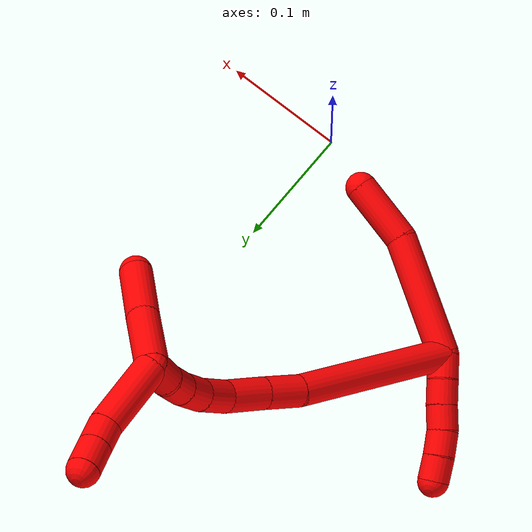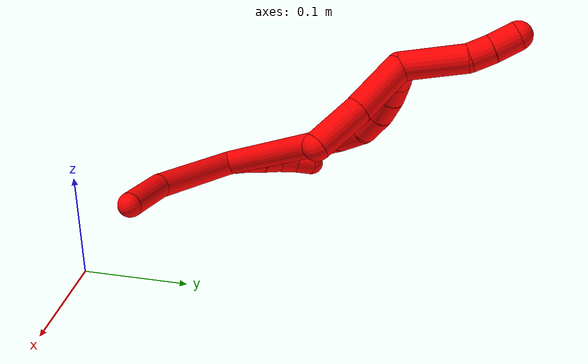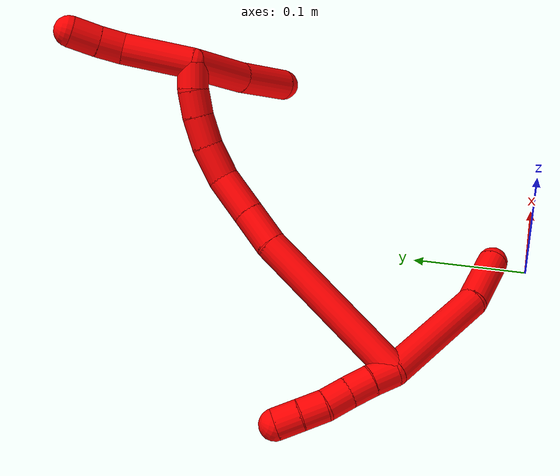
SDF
<sdf version="1.7">
 <world name="default">
  <model name="2">
   <static>0</static>
   <link name="2">
    <collision name="collision-cylinder-e_1_2_8">
     <pose>0.026099 -0.026071 -0.032211 2.46116 0.562049 1.36821</pose>
     <geometry><cylinder><radius>0.0125</radius><length>0.097947</length></cylinder></geometry>
     <surface>
      <friction><ode><mu>1.16</mu><mu2>1.16</mu2><slip1>0</slip1><slip2>0</slip2></ode></friction>
      <contact><ode><kp>1e+06</kp><kd>1</kd><max_vel>0</max_vel><min_depth>0.001</min_depth></ode></contact>
     </surface>
    </collision>
    <visual name="visual-cylinder-e_1_2_8">
     <pose>0.026099 -0.026071 -0.032211 2.46116 0.562049 1.36821</pose>
     <geometry><cylinder><radius>0.0125</radius><length>0.097947</length></cylinder></geometry>
     <material><ambient>1 0 0 1</ambient></material>
    </visual>
    <collision name="collision-cylinder-e_2_8_6">
     <pose>0.071868 -0.064713 -0.075932 2.31217 0.856804 1.60746</pose>
     <geometry><cylinder><radius>0.0125</radius><length>0.052053</length></cylinder></geometry>
     <surface>
      <friction><ode><mu>1.16</mu><mu2>1.16</mu2><slip1>0</slip1><slip2>0</slip2></ode></friction>
      <contact><ode><kp>1e+06</kp><kd>1</kd><max_vel>0</max_vel><min_depth>0.001</min_depth></ode></contact>
     </surface>
    </collision>
    <visual name="visual-cylinder-e_2_8_6">
     <pose>0.071868 -0.064713 -0.075932 2.31217 0.856804 1.60746</pose>
     <geometry><cylinder><radius>0.0125</radius><length>0.052053</length></cylinder></geometry>
     <material><ambient>1 0 0 1</ambient></material>
    </visual>
    <collision name="collision-cylinder-e_1_2_9">
     <pose>-0.001978 0.005489 0.008121 -0.594353 -0.199153 0.061173</pose>
     <geometry><cylinder><radius>0.0125</radius><length>0.02</length></cylinder></geometry>
     <surface>
      <friction><ode><mu>1.16</mu><mu2>1.16</mu2><slip1>0</slip1><slip2>0</slip2></ode></friction>
      <contact><ode><kp>1e+06</kp><kd>1</kd><max_vel>0</max_vel><min_depth>0.001</min_depth></ode></contact>
     </surface>
    </collision>
    <visual name="visual-cylinder-e_1_2_9">
     <pose>-0.001978 0.005489 0.008121 -0.594353 -0.199153 0.061173</pose>
     <geometry><cylinder><radius>0.0125</radius><length>0.02</length></cylinder></geometry>
     <material><ambient>1 0 0 1</ambient></material>
    </visual>
    <collision name="collision-cylinder-e_2_9_10">
     <pose>-0.005714 0.017182 0.023886 -0.68176 -0.176682 0.062817</pose>
     <geometry><cylinder><radius>0.0125</radius><length>0.02</length></cylinder></geometry>
     <surface>
      <friction><ode><mu>1.16</mu><mu2>1.16</mu2><slip1>0</slip1><slip2>0</slip2></ode></friction>
      <contact><ode><kp>1e+06</kp><kd>1</kd><max_vel>0</max_vel><min_depth>0.001</min_depth></ode></contact>
     </surface>
    </collision>
    <visual name="visual-cylinder-e_2_9_10">
     <pose>-0.005714 0.017182 0.023886 -0.68176 -0.176682 0.062817</pose>
     <geometry><cylinder><radius>0.0125</radius><length>0.02</length></cylinder></geometry>
     <material><ambient>1 0 0 1</ambient></material>
    </visual>
    <collision name="collision-cylinder-e_3_10_11">
     <pose>-0.00987 0.029494 0.039076 -0.680542 -0.242179 0.08611</pose>
     <geometry><cylinder><radius>0.0125</radius><length>0.02</length></cylinder></geometry>
     <surface>
      <friction><ode><mu>1.16</mu><mu2>1.16</mu2><slip1>0</slip1><slip2>0</slip2></ode></friction>
      <contact><ode><kp>1e+06</kp><kd>1</kd><max_vel>0</max_vel><min_depth>0.001</min_depth></ode></contact>
     </surface>
    </collision>
    <visual name="visual-cylinder-e_3_10_11">
     <pose>-0.00987 0.029494 0.039076 -0.680542 -0.242179 0.08611</pose>
     <geometry><cylinder><radius>0.0125</radius><length>0.02</length></cylinder></geometry>
     <material><ambient>1 0 0 1</ambient></material>
    </visual>
    <collision name="collision-cylinder-e_4_11_12">
     <pose>-0.012972 0.041385 0.054749 -0.618442 -0.070397 0.022498</pose>
     <geometry><cylinder><radius>0.0125</radius><length>0.02</length></cylinder></geometry>
     <surface>
      <friction><ode><mu>1.16</mu><mu2>1.16</mu2><slip1>0</slip1><slip2>0</slip2></ode></friction>
      <contact><ode><kp>1e+06</kp><kd>1</kd><max_vel>0</max_vel><min_depth>0.001</min_depth></ode></contact>
     </surface>
    </collision>
    <visual name="visual-cylinder-e_4_11_12">
     <pose>-0.012972 0.041385 0.054749 -0.618442 -0.070397 0.022498</pose>
     <geometry><cylinder><radius>0.0125</radius><length>0.02</length></cylinder></geometry>
     <material><ambient>1 0 0 1</ambient></material>
    </visual>
    <collision name="collision-cylinder-e_5_12_5">
     <pose>-0.013558 0.053347 0.070739 -0.666033 0.011698 -0.004046</pose>
     <geometry><cylinder><radius>0.0125</radius><length>0.02</length></cylinder></geometry>
     <surface>
      <friction><ode><mu>1.16</mu><mu2>1.16</mu2><slip1>0</slip1><slip2>0</slip2></ode></friction>
      <contact><ode><kp>1e+06</kp><kd>1</kd><max_vel>0</max_vel><min_depth>0.001</min_depth></ode></contact>
     </surface>
    </collision>
    <visual name="visual-cylinder-e_5_12_5">
     <pose>-0.013558 0.053347 0.070739 -0.666033 0.011698 -0.004046</pose>
     <geometry><cylinder><radius>0.0125</radius><length>0.02</length></cylinder></geometry>
     <material><ambient>1 0 0 1</ambient></material>
    </visual>
    <collision name="collision-cylinder-e_1_2_13">
     <pose>0.040081 -0.022184 0.051324 0.407993 0.621944 0.132783</pose>
     <geometry><cylinder><radius>0.0125</radius><length>0.13759</length></cylinder></geometry>
     <surface>
      <friction><ode><mu>1.16</mu><mu2>1.16</mu2><slip1>0</slip1><slip2>0</slip2></ode></friction>
      <contact><ode><kp>1e+06</kp><kd>1</kd><max_vel>0</max_vel><min_depth>0.001</min_depth></ode></contact>
     </surface>
    </collision>
    <visual name="visual-cylinder-e_1_2_13">
     <pose>0.040081 -0.022184 0.051324 0.407993 0.621944 0.132783</pose>
     <geometry><cylinder><radius>0.0125</radius><length>0.13759</length></cylinder></geometry>
     <material><ambient>1 0 0 1</ambient></material>
    </visual>
    <collision name="collision-cylinder-e_2_13_14">
     <pose>0.090283 -0.050937 0.112772 0.57552 0.697839 0.214528</pose>
     <geometry><cylinder><radius>0.0125</radius><length>0.031501</length></cylinder></geometry>
     <surface>
      <friction><ode><mu>1.16</mu><mu2>1.16</mu2><slip1>0</slip1><slip2>0</slip2></ode></friction>
      <contact><ode><kp>1e+06</kp><kd>1</kd><max_vel>0</max_vel><min_depth>0.001</min_depth></ode></contact>
     </surface>
    </collision>
    <visual name="visual-cylinder-e_2_13_14">
     <pose>0.090283 -0.050937 0.112772 0.57552 0.697839 0.214528</pose>
     <geometry><cylinder><radius>0.0125</radius><length>0.031501</length></cylinder></geometry>
     <material><ambient>1 0 0 1</ambient></material>
    </visual>
    <collision name="collision-cylinder-e_3_14_15">
     <pose>0.110765 -0.06541 0.134816 0.585534 0.62697 0.194812</pose>
     <geometry><cylinder><radius>0.0125</radius><length>0.035322</length></cylinder></geometry>
     <surface>
      <friction><ode><mu>1.16</mu><mu2>1.16</mu2><slip1>0</slip1><slip2>0</slip2></ode></friction>
      <contact><ode><kp>1e+06</kp><kd>1</kd><max_vel>0</max_vel><min_depth>0.001</min_depth></ode></contact>
     </surface>
    </collision>
    <visual name="visual-cylinder-e_3_14_15">
     <pose>0.110765 -0.06541 0.134816 0.585534 0.62697 0.194812</pose>
     <geometry><cylinder><radius>0.0125</radius><length>0.035322</length></cylinder></geometry>
     <material><ambient>1 0 0 1</ambient></material>
    </visual>
    <collision name="collision-cylinder-e_4_15_16">
     <pose>0.126356 -0.082915 0.156141 0.795671 0.371051 0.15742</pose>
     <geometry><cylinder><radius>0.0125</radius><length>0.028845</length></cylinder></geometry>
     <surface>
      <friction><ode><mu>1.16</mu><mu2>1.16</mu2><slip1>0</slip1><slip2>0</slip2></ode></friction>
      <contact><ode><kp>1e+06</kp><kd>1</kd><max_vel>0</max_vel><min_depth>0.001</min_depth></ode></contact>
     </surface>
    </collision>
    <visual name="visual-cylinder-e_4_15_16">
     <pose>0.126356 -0.082915 0.156141 0.795671 0.371051 0.15742</pose>
     <geometry><cylinder><radius>0.0125</radius><length>0.028845</length></cylinder></geometry>
     <material><ambient>1 0 0 1</ambient></material>
    </visual>
    <collision name="collision-cylinder-e_5_16_17">
     <pose>0.135094 -0.102235 0.172443 0.953696 0.286319 0.14866</pose>
     <geometry><cylinder><radius>0.0125</radius><length>0.024842</length></cylinder></geometry>
     <surface>
      <friction><ode><mu>1.16</mu><mu2>1.16</mu2><slip1>0</slip1><slip2>0</slip2></ode></friction>
      <contact><ode><kp>1e+06</kp><kd>1</kd><max_vel>0</max_vel><min_depth>0.001</min_depth></ode></contact>
     </surface>
    </collision>
    <visual name="visual-cylinder-e_5_16_17">
     <pose>0.135094 -0.102235 0.172443 0.953696 0.286319 0.14866</pose>
     <geometry><cylinder><radius>0.0125</radius><length>0.024842</length></cylinder></geometry>
     <material><ambient>1 0 0 1</ambient></material>
    </visual>
    <collision name="collision-cylinder-e_6_17_18">
     <pose>0.14116 -0.120999 0.184165 1.08068 0.244457 0.147117</pose>
     <geometry><cylinder><radius>0.0125</radius><length>0.021136</length></cylinder></geometry>
     <surface>
      <friction><ode><mu>1.16</mu><mu2>1.16</mu2><slip1>0</slip1><slip2>0</slip2></ode></friction>
      <contact><ode><kp>1e+06</kp><kd>1</kd><max_vel>0</max_vel><min_depth>0.001</min_depth></ode></contact>
     </surface>
    </collision>
    <visual name="visual-cylinder-e_6_17_18">
     <pose>0.14116 -0.120999 0.184165 1.08068 0.244457 0.147117</pose>
     <geometry><cylinder><radius>0.0125</radius><length>0.021136</length></cylinder></geometry>
     <material><ambient>1 0 0 1</ambient></material>
    </visual>
    <collision name="collision-cylinder-e_7_18_1">
     <pose>0.147222 -0.139412 0.191779 1.28159 0.344313 0.257909</pose>
     <geometry><cylinder><radius>0.0125</radius><length>0.020763</length></cylinder></geometry>
     <surface>
      <friction><ode><mu>1.16</mu><mu2>1.16</mu2><slip1>0</slip1><slip2>0</slip2></ode></friction>
      <contact><ode><kp>1e+06</kp><kd>1</kd><max_vel>0</max_vel><min_depth>0.001</min_depth></ode></contact>
     </surface>
    </collision>
    <visual name="visual-cylinder-e_7_18_1">
     <pose>0.147222 -0.139412 0.191779 1.28159 0.344313 0.257909</pose>
     <geometry><cylinder><radius>0.0125</radius><length>0.020763</length></cylinder></geometry>
     <material><ambient>1 0 0 1</ambient></material>
    </visual>
    <collision name="collision-cylinder-e_1_1_19">
     <pose>0.158386 -0.144399 0.221471 -0.161387 0.273928 -0.022291</pose>
     <geometry><cylinder><radius>0.0125</radius><length>0.056631</length></cylinder></geometry>
     <surface>
      <friction><ode><mu>1.16</mu><mu2>1.16</mu2><slip1>0</slip1><slip2>0</slip2></ode></friction>
      <contact><ode><kp>1e+06</kp><kd>1</kd><max_vel>0</max_vel><min_depth>0.001</min_depth></ode></contact>
     </surface>
    </collision>
    <visual name="visual-cylinder-e_1_1_19">
     <pose>0.158386 -0.144399 0.221471 -0.161387 0.273928 -0.022291</pose>
     <geometry><cylinder><radius>0.0125</radius><length>0.056631</length></cylinder></geometry>
     <material><ambient>1 0 0 1</ambient></material>
    </visual>
    <collision name="collision-cylinder-e_2_19_20">
     <pose>0.166115 -0.13971 0.258468 -0.030487 0.006863 -0.000105</pose>
     <geometry><cylinder><radius>0.0125</radius><length>0.020194</length></cylinder></geometry>
     <surface>
      <friction><ode><mu>1.16</mu><mu2>1.16</mu2><slip1>0</slip1><slip2>0</slip2></ode></friction>
      <contact><ode><kp>1e+06</kp><kd>1</kd><max_vel>0</max_vel><min_depth>0.001</min_depth></ode></contact>
     </surface>
    </collision>
    <visual name="visual-cylinder-e_2_19_20">
     <pose>0.166115 -0.13971 0.258468 -0.030487 0.006863 -0.000105</pose>
     <geometry><cylinder><radius>0.0125</radius><length>0.020194</length></cylinder></geometry>
     <material><ambient>1 0 0 1</ambient></material>
    </visual>
    <collision name="collision-cylinder-e_3_20_4">
     <pose>0.165694 -0.139935 0.280125 0.04599 -0.042347 -0.000974</pose>
     <geometry><cylinder><radius>0.0125</radius><length>0.023175</length></cylinder></geometry>
     <surface>
      <friction><ode><mu>1.16</mu><mu2>1.16</mu2><slip1>0</slip1><slip2>0</slip2></ode></friction>
      <contact><ode><kp>1e+06</kp><kd>1</kd><max_vel>0</max_vel><min_depth>0.001</min_depth></ode></contact>
     </surface>
    </collision>
    <visual name="visual-cylinder-e_3_20_4">
     <pose>0.165694 -0.139935 0.280125 0.04599 -0.042347 -0.000974</pose>
     <geometry><cylinder><radius>0.0125</radius><length>0.023175</length></cylinder></geometry>
     <material><ambient>1 0 0 1</ambient></material>
    </visual>
    <collision name="collision-cylinder-e_1_1_21">
     <pose>0.163482 -0.146804 0.171655 -3.0556 0.506454 -2.8121</pose>
     <geometry><cylinder><radius>0.0125</radius><length>0.052594</length></cylinder></geometry>
     <surface>
      <friction><ode><mu>1.16</mu><mu2>1.16</mu2><slip1>0</slip1><slip2>0</slip2></ode></friction>
      <contact><ode><kp>1e+06</kp><kd>1</kd><max_vel>0</max_vel><min_depth>0.001</min_depth></ode></contact>
     </surface>
    </collision>
    <visual name="visual-cylinder-e_1_1_21">
     <pose>0.163482 -0.146804 0.171655 -3.0556 0.506454 -2.8121</pose>
     <geometry><cylinder><radius>0.0125</radius><length>0.052594</length></cylinder></geometry>
     <material><ambient>1 0 0 1</ambient></material>
    </visual>
    <collision name="collision-cylinder-e_2_21_3">
     <pose>0.187325 -0.145101 0.127795 3.1286 0.486716 3.08929</pose>
     <geometry><cylinder><radius>0.0125</radius><length>0.047406</length></cylinder></geometry>
     <surface>
      <friction><ode><mu>1.16</mu><mu2>1.16</mu2><slip1>0</slip1><slip2>0</slip2></ode></friction>
      <contact><ode><kp>1e+06</kp><kd>1</kd><max_vel>0</max_vel><min_depth>0.001</min_depth></ode></contact>
     </surface>
    </collision>
    <visual name="visual-cylinder-e_2_21_3">
     <pose>0.187325 -0.145101 0.127795 3.1286 0.486716 3.08929</pose>
     <geometry><cylinder><radius>0.0125</radius><length>0.047406</length></cylinder></geometry>
     <material><ambient>1 0 0 1</ambient></material>
    </visual>
    <collision name="collision-sphere-3">
     <pose>0.198411 -0.145373 0.106846 0 -0 0</pose>
     <geometry><sphere><radius>0.0125</radius></sphere></geometry>
     <surface>
      <friction><ode><mu>1.16</mu><mu2>1.16</mu2><slip1>0</slip1><slip2>0</slip2></ode></friction>
      <contact><ode><kp>1e+06</kp><kd>1</kd><max_vel>0</max_vel><min_depth>0.001</min_depth></ode></contact>
     </surface>
    </collision>
    <visual name="visual-sphere-3">
     <pose>0.198411 -0.145373 0.106846 0 -0 0</pose>
     <geometry><sphere><radius>0.0125</radius></sphere></geometry>
     <material><ambient>1 0 0 1</ambient></material>
    </visual>
    <collision name="collision-sphere-21">
     <pose>0.176238 -0.144829 0.148744 0 -0 0</pose>
     <geometry><sphere><radius>0.0125</radius></sphere></geometry>
     <surface>
      <friction><ode><mu>1.16</mu><mu2>1.16</mu2><slip1>0</slip1><slip2>0</slip2></ode></friction>
      <contact><ode><kp>1e+06</kp><kd>1</kd><max_vel>0</max_vel><min_depth>0.001</min_depth></ode></contact>
     </surface>
    </collision>
    <visual name="visual-sphere-21">
     <pose>0.176238 -0.144829 0.148744 0 -0 0</pose>
     <geometry><sphere><radius>0.0125</radius></sphere></geometry>
     <material><ambient>1 0 0 1</ambient></material>
    </visual>
    <collision name="collision-sphere-4">
     <pose>0.165203 -0.140467 0.29169 0 -0 0</pose>
     <geometry><sphere><radius>0.0125</radius></sphere></geometry>
     <surface>
      <friction><ode><mu>1.16</mu><mu2>1.16</mu2><slip1>0</slip1><slip2>0</slip2></ode></friction>
      <contact><ode><kp>1e+06</kp><kd>1</kd><max_vel>0</max_vel><min_depth>0.001</min_depth></ode></contact>
     </surface>
    </collision>
    <visual name="visual-sphere-4">
     <pose>0.165203 -0.140467 0.29169 0 -0 0</pose>
     <geometry><sphere><radius>0.0125</radius></sphere></geometry>
     <material><ambient>1 0 0 1</ambient></material>
    </visual>
    <collision name="collision-sphere-20">
     <pose>0.166184 -0.139403 0.268561 0 -0 0</pose>
     <geometry><sphere><radius>0.0125</radius></sphere></geometry>
     <surface>
      <friction><ode><mu>1.16</mu><mu2>1.16</mu2><slip1>0</slip1><slip2>0</slip2></ode></friction>
      <contact><ode><kp>1e+06</kp><kd>1</kd><max_vel>0</max_vel><min_depth>0.001</min_depth></ode></contact>
     </surface>
    </collision>
    <visual name="visual-sphere-20">
     <pose>0.166184 -0.139403 0.268561 0 -0 0</pose>
     <geometry><sphere><radius>0.0125</radius></sphere></geometry>
     <material><ambient>1 0 0 1</ambient></material>
    </visual>
    <collision name="collision-sphere-11">
     <pose>-0.012268 0.035602 0.046621 0 -0 0</pose>
     <geometry><sphere><radius>0.0125</radius></sphere></geometry>
     <surface>
      <friction><ode><mu>1.16</mu><mu2>1.16</mu2><slip1>0</slip1><slip2>0</slip2></ode></friction>
      <contact><ode><kp>1e+06</kp><kd>1</kd><max_vel>0</max_vel><min_depth>0.001</min_depth></ode></contact>
     </surface>
    </collision>
    <visual name="visual-sphere-11">
     <pose>-0.012268 0.035602 0.046621 0 -0 0</pose>
     <geometry><sphere><radius>0.0125</radius></sphere></geometry>
     <material><ambient>1 0 0 1</ambient></material>
    </visual>
    <collision name="collision-sphere-10">
     <pose>-0.007472 0.023385 0.03153 0 -0 0</pose>
     <geometry><sphere><radius>0.0125</radius></sphere></geometry>
     <surface>
      <friction><ode><mu>1.16</mu><mu2>1.16</mu2><slip1>0</slip1><slip2>0</slip2></ode></friction>
      <contact><ode><kp>1e+06</kp><kd>1</kd><max_vel>0</max_vel><min_depth>0.001</min_depth></ode></contact>
     </surface>
    </collision>
    <visual name="visual-sphere-10">
     <pose>-0.007472 0.023385 0.03153 0 -0 0</pose>
     <geometry><sphere><radius>0.0125</radius></sphere></geometry>
     <material><ambient>1 0 0 1</ambient></material>
    </visual>
    <collision name="collision-sphere-6">
     <pose>0.091537 -0.077283 -0.087441 0 -0 0</pose>
     <geometry><sphere><radius>0.0125</radius></sphere></geometry>
     <surface>
      <friction><ode><mu>1.16</mu><mu2>1.16</mu2><slip1>0</slip1><slip2>0</slip2></ode></friction>
      <contact><ode><kp>1e+06</kp><kd>1</kd><max_vel>0</max_vel><min_depth>0.001</min_depth></ode></contact>
     </surface>
    </collision>
    <visual name="visual-sphere-6">
     <pose>0.091537 -0.077283 -0.087441 0 -0 0</pose>
     <geometry><sphere><radius>0.0125</radius></sphere></geometry>
     <material><ambient>1 0 0 1</ambient></material>
    </visual>
    <collision name="collision-sphere-9">
     <pose>-0.003957 0.010978 0.016243 0 -0 0</pose>
     <geometry><sphere><radius>0.0125</radius></sphere></geometry>
     <surface>
      <friction><ode><mu>1.16</mu><mu2>1.16</mu2><slip1>0</slip1><slip2>0</slip2></ode></friction>
      <contact><ode><kp>1e+06</kp><kd>1</kd><max_vel>0</max_vel><min_depth>0.001</min_depth></ode></contact>
     </surface>
    </collision>
    <visual name="visual-sphere-9">
     <pose>-0.003957 0.010978 0.016243 0 -0 0</pose>
     <geometry><sphere><radius>0.0125</radius></sphere></geometry>
     <material><ambient>1 0 0 1</ambient></material>
    </visual>
    <collision name="collision-sphere-2">
     <geometry><sphere><radius>0.0125</radius></sphere></geometry>
     <surface>
      <friction><ode><mu>1.16</mu><mu2>1.16</mu2><slip1>0</slip1><slip2>0</slip2></ode></friction>
      <contact><ode><kp>1e+06</kp><kd>1</kd><max_vel>0</max_vel><min_depth>0.001</min_depth></ode></contact>
     </surface>
    </collision>
    <visual name="visual-sphere-2">
     <geometry><sphere><radius>0.0125</radius></sphere></geometry>
     <material><ambient>1 0 0 1</ambient></material>
    </visual>
    <collision name="collision-sphere-19">
     <pose>0.166046 -0.140018 0.248376 0 -0 0</pose>
     <geometry><sphere><radius>0.0125</radius></sphere></geometry>
     <surface>
      <friction><ode><mu>1.16</mu><mu2>1.16</mu2><slip1>0</slip1><slip2>0</slip2></ode></friction>
      <contact><ode><kp>1e+06</kp><kd>1</kd><max_vel>0</max_vel><min_depth>0.001</min_depth></ode></contact>
     </surface>
    </collision>
    <visual name="visual-sphere-19">
     <pose>0.166046 -0.140018 0.248376 0 -0 0</pose>
     <geometry><sphere><radius>0.0125</radius></sphere></geometry>
     <material><ambient>1 0 0 1</ambient></material>
    </visual>
    <collision name="collision-sphere-8">
     <pose>0.052198 -0.052142 -0.064422 0 -0 0</pose>
     <geometry><sphere><radius>0.0125</radius></sphere></geometry>
     <surface>
      <friction><ode><mu>1.16</mu><mu2>1.16</mu2><slip1>0</slip1><slip2>0</slip2></ode></friction>
      <contact><ode><kp>1e+06</kp><kd>1</kd><max_vel>0</max_vel><min_depth>0.001</min_depth></ode></contact>
     </surface>
    </collision>
    <visual name="visual-sphere-8">
     <pose>0.052198 -0.052142 -0.064422 0 -0 0</pose>
     <geometry><sphere><radius>0.0125</radius></sphere></geometry>
     <material><ambient>1 0 0 1</ambient></material>
    </visual>
    <collision name="collision-sphere-12">
     <pose>-0.013675 0.047169 0.062877 0 -0 0</pose>
     <geometry><sphere><radius>0.0125</radius></sphere></geometry>
     <surface>
      <friction><ode><mu>1.16</mu><mu2>1.16</mu2><slip1>0</slip1><slip2>0</slip2></ode></friction>
      <contact><ode><kp>1e+06</kp><kd>1</kd><max_vel>0</max_vel><min_depth>0.001</min_depth></ode></contact>
     </surface>
    </collision>
    <visual name="visual-sphere-12">
     <pose>-0.013675 0.047169 0.062877 0 -0 0</pose>
     <geometry><sphere><radius>0.0125</radius></sphere></geometry>
     <material><ambient>1 0 0 1</ambient></material>
    </visual>
    <collision name="collision-sphere-5">
     <pose>-0.013441 0.059525 0.078601 0 -0 0</pose>
     <geometry><sphere><radius>0.0125</radius></sphere></geometry>
     <surface>
      <friction><ode><mu>1.16</mu><mu2>1.16</mu2><slip1>0</slip1><slip2>0</slip2></ode></friction>
      <contact><ode><kp>1e+06</kp><kd>1</kd><max_vel>0</max_vel><min_depth>0.001</min_depth></ode></contact>
     </surface>
    </collision>
    <visual name="visual-sphere-5">
     <pose>-0.013441 0.059525 0.078601 0 -0 0</pose>
     <geometry><sphere><radius>0.0125</radius></sphere></geometry>
     <material><ambient>1 0 0 1</ambient></material>
    </visual>
    <collision name="collision-sphere-13">
     <pose>0.080162 -0.044369 0.102647 0 -0 0</pose>
     <geometry><sphere><radius>0.0125</radius></sphere></geometry>
     <surface>
      <friction><ode><mu>1.16</mu><mu2>1.16</mu2><slip1>0</slip1><slip2>0</slip2></ode></friction>
      <contact><ode><kp>1e+06</kp><kd>1</kd><max_vel>0</max_vel><min_depth>0.001</min_depth></ode></contact>
     </surface>
    </collision>
    <visual name="visual-sphere-13">
     <pose>0.080162 -0.044369 0.102647 0 -0 0</pose>
     <geometry><sphere><radius>0.0125</radius></sphere></geometry>
     <material><ambient>1 0 0 1</ambient></material>
    </visual>
    <collision name="collision-sphere-14">
     <pose>0.100404 -0.057506 0.122896 0 -0 0</pose>
     <geometry><sphere><radius>0.0125</radius></sphere></geometry>
     <surface>
      <friction><ode><mu>1.16</mu><mu2>1.16</mu2><slip1>0</slip1><slip2>0</slip2></ode></friction>
      <contact><ode><kp>1e+06</kp><kd>1</kd><max_vel>0</max_vel><min_depth>0.001</min_depth></ode></contact>
     </surface>
    </collision>
    <visual name="visual-sphere-14">
     <pose>0.100404 -0.057506 0.122896 0 -0 0</pose>
     <geometry><sphere><radius>0.0125</radius></sphere></geometry>
     <material><ambient>1 0 0 1</ambient></material>
    </visual>
    <collision name="collision-sphere-15">
     <pose>0.121127 -0.073314 0.146735 0 -0 0</pose>
     <geometry><sphere><radius>0.0125</radius></sphere></geometry>
     <surface>
      <friction><ode><mu>1.16</mu><mu2>1.16</mu2><slip1>0</slip1><slip2>0</slip2></ode></friction>
      <contact><ode><kp>1e+06</kp><kd>1</kd><max_vel>0</max_vel><min_depth>0.001</min_depth></ode></contact>
     </surface>
    </collision>
    <visual name="visual-sphere-15">
     <pose>0.121127 -0.073314 0.146735 0 -0 0</pose>
     <geometry><sphere><radius>0.0125</radius></sphere></geometry>
     <material><ambient>1 0 0 1</ambient></material>
    </visual>
    <collision name="collision-sphere-16">
     <pose>0.131586 -0.092517 0.165548 0 -0 0</pose>
     <geometry><sphere><radius>0.0125</radius></sphere></geometry>
     <surface>
      <friction><ode><mu>1.16</mu><mu2>1.16</mu2><slip1>0</slip1><slip2>0</slip2></ode></friction>
      <contact><ode><kp>1e+06</kp><kd>1</kd><max_vel>0</max_vel><min_depth>0.001</min_depth></ode></contact>
     </surface>
    </collision>
    <visual name="visual-sphere-16">
     <pose>0.131586 -0.092517 0.165548 0 -0 0</pose>
     <geometry><sphere><radius>0.0125</radius></sphere></geometry>
     <material><ambient>1 0 0 1</ambient></material>
    </visual>
    <collision name="collision-sphere-17">
     <pose>0.138602 -0.111952 0.179338 0 -0 0</pose>
     <geometry><sphere><radius>0.0125</radius></sphere></geometry>
     <surface>
      <friction><ode><mu>1.16</mu><mu2>1.16</mu2><slip1>0</slip1><slip2>0</slip2></ode></friction>
      <contact><ode><kp>1e+06</kp><kd>1</kd><max_vel>0</max_vel><min_depth>0.001</min_depth></ode></contact>
     </surface>
    </collision>
    <visual name="visual-sphere-17">
     <pose>0.138602 -0.111952 0.179338 0 -0 0</pose>
     <geometry><sphere><radius>0.0125</radius></sphere></geometry>
     <material><ambient>1 0 0 1</ambient></material>
    </visual>
    <collision name="collision-sphere-18">
     <pose>0.143718 -0.130046 0.188992 0 -0 0</pose>
     <geometry><sphere><radius>0.0125</radius></sphere></geometry>
     <surface>
      <friction><ode><mu>1.16</mu><mu2>1.16</mu2><slip1>0</slip1><slip2>0</slip2></ode></friction>
      <contact><ode><kp>1e+06</kp><kd>1</kd><max_vel>0</max_vel><min_depth>0.001</min_depth></ode></contact>
     </surface>
    </collision>
    <visual name="visual-sphere-18">
     <pose>0.143718 -0.130046 0.188992 0 -0 0</pose>
     <geometry><sphere><radius>0.0125</radius></sphere></geometry>
     <material><ambient>1 0 0 1</ambient></material>
    </visual>
    <collision name="collision-sphere-1">
     <pose>0.150726 -0.148779 0.194565 0 -0 0</pose>
     <geometry><sphere><radius>0.0125</radius></sphere></geometry>
     <surface>
      <friction><ode><mu>1.16</mu><mu2>1.16</mu2><slip1>0</slip1><slip2>0</slip2></ode></friction>
      <contact><ode><kp>1e+06</kp><kd>1</kd><max_vel>0</max_vel><min_depth>0.001</min_depth></ode></contact>
     </surface>
    </collision>
    <visual name="visual-sphere-1">
     <pose>0.150726 -0.148779 0.194565 0 -0 0</pose>
     <geometry><sphere><radius>0.0125</radius></sphere></geometry>
     <material><ambient>1 0 0 1</ambient></material>
    </visual>
    <inertial>
     <pose>0.085827 -0.065569 0.090936 0 -0 0</pose>
     <mass>0.75</mass>
     <inertia>
      <ixx>0.000337</ixx>
      <ixy>0</ixy>
      <ixz>0</ixz>
      <iyy>0.000383</iyy>
      <iyz>0</iyz>
      <izz>-6.7e-05</izz>
     </inertia>
    </inertial>
   </link>
   <pose>-0.186257 0.092868 0.031111 -1.15847 0.215494 0.40754</pose>
  </model>
 </world>
</sdf>
